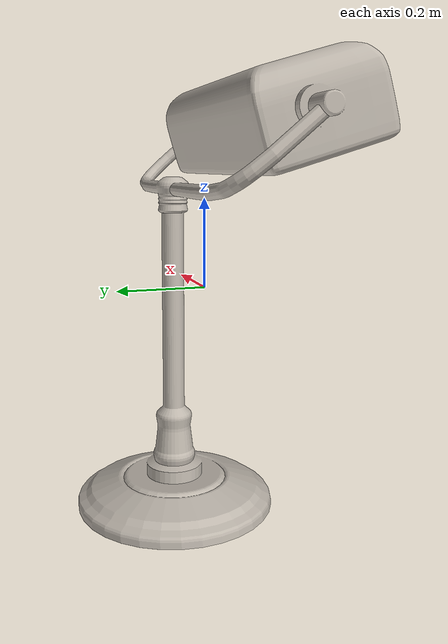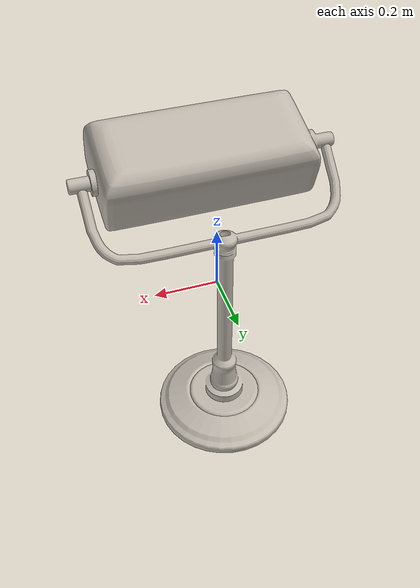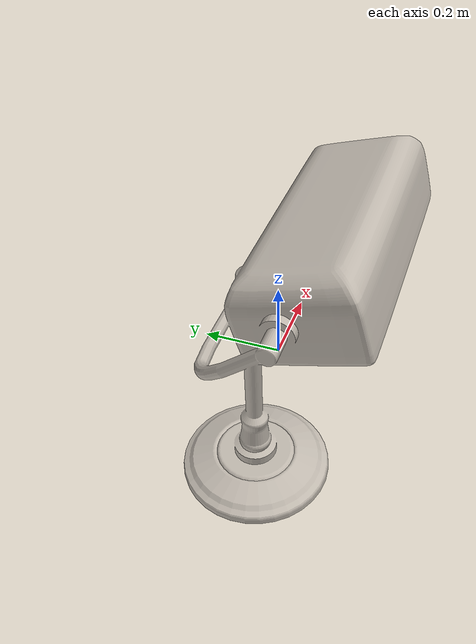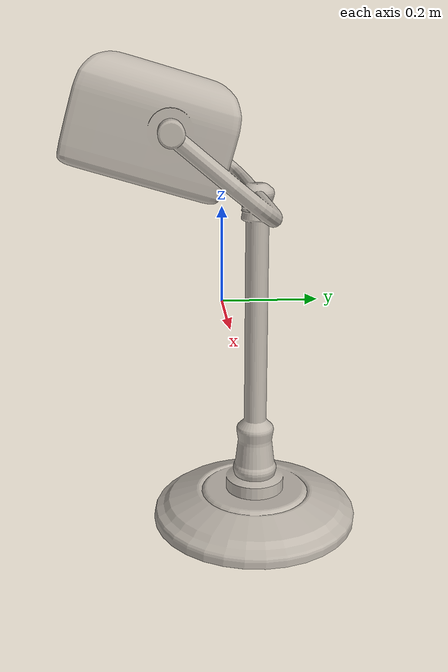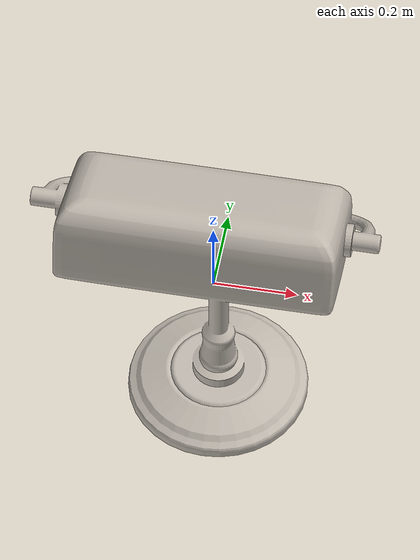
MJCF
<mujoco model="table_lamp">
  <asset>
  <texture file="visual/ceramic.png" name="tex-table_lamp" type="2d" />
  <material name="table_lamp" reflectance="0.5" texrepeat="1 1" texture="tex-table_lamp" texuniform="false" />
  <mesh file="visual/model_normalized_0.obj" name="model_normalized_0_vis" scale="1.0 1.0 1.0" /><mesh file="collision/model_normalized_collision_22.obj" name="model_normalized_collision_22._coll" scale="1.0 1.0 1.0" /><mesh file="collision/model_normalized_collision_4.obj" name="model_normalized_collision_4._coll" scale="1.0 1.0 1.0" /><mesh file="collision/model_normalized_collision_27.obj" name="model_normalized_collision_27._coll" scale="1.0 1.0 1.0" /><mesh file="collision/model_normalized_collision_6.obj" name="model_normalized_collision_6._coll" scale="1.0 1.0 1.0" /><mesh file="collision/model_normalized_collision_25.obj" name="model_normalized_collision_25._coll" scale="1.0 1.0 1.0" /><mesh file="collision/model_normalized_collision_26.obj" name="model_normalized_collision_26._coll" scale="1.0 1.0 1.0" /><mesh file="collision/model_normalized_collision_29.obj" name="model_normalized_collision_29._coll" scale="1.0 1.0 1.0" /><mesh file="collision/model_normalized_collision_19.obj" name="model_normalized_collision_19._coll" scale="1.0 1.0 1.0" /><mesh file="collision/model_normalized_collision_12.obj" name="model_normalized_collision_12._coll" scale="1.0 1.0 1.0" /><mesh file="collision/model_normalized_collision_17.obj" name="model_normalized_collision_17._coll" scale="1.0 1.0 1.0" /><mesh file="collision/model_normalized_collision_20.obj" name="model_normalized_collision_20._coll" scale="1.0 1.0 1.0" /><mesh file="collision/model_normalized_collision_14.obj" name="model_normalized_collision_14._coll" scale="1.0 1.0 1.0" /><mesh file="collision/model_normalized_collision_18.obj" name="model_normalized_collision_18._coll" scale="1.0 1.0 1.0" /><mesh file="collision/model_normalized_collision_15.obj" name="model_normalized_collision_15._coll" scale="1.0 1.0 1.0" /><mesh file="collision/model_normalized_collision_30.obj" name="model_normalized_collision_30._coll" scale="1.0 1.0 1.0" /><mesh file="collision/model_normalized_collision_31.obj" name="model_normalized_collision_31._coll" scale="1.0 1.0 1.0" /><mesh file="collision/model_normalized_collision_23.obj" name="model_normalized_collision_23._coll" scale="1.0 1.0 1.0" /><mesh file="collision/model_normalized_collision_28.obj" name="model_normalized_collision_28._coll" scale="1.0 1.0 1.0" /><mesh file="collision/model_normalized_collision_13.obj" name="model_normalized_collision_13._coll" scale="1.0 1.0 1.0" /><mesh file="collision/model_normalized_collision_5.obj" name="model_normalized_collision_5._coll" scale="1.0 1.0 1.0" /><mesh file="collision/model_normalized_collision_24.obj" name="model_normalized_collision_24._coll" scale="1.0 1.0 1.0" /><mesh file="collision/model_normalized_collision_16.obj" name="model_normalized_collision_16._coll" scale="1.0 1.0 1.0" /><mesh file="collision/model_normalized_collision_11.obj" name="model_normalized_collision_11._coll" scale="1.0 1.0 1.0" /><mesh file="collision/model_normalized_collision_1.obj" name="model_normalized_collision_1._coll" scale="1.0 1.0 1.0" /><mesh file="collision/model_normalized_collision_10.obj" name="model_normalized_collision_10._coll" scale="1.0 1.0 1.0" /><mesh file="collision/model_normalized_collision_21.obj" name="model_normalized_collision_21._coll" scale="1.0 1.0 1.0" /><mesh file="collision/model_normalized_collision_8.obj" name="model_normalized_collision_8._coll" scale="1.0 1.0 1.0" /><mesh file="collision/model_normalized_collision_7.obj" name="model_normalized_collision_7._coll" scale="1.0 1.0 1.0" /><mesh file="collision/model_normalized_collision_3.obj" name="model_normalized_collision_3._coll" scale="1.0 1.0 1.0" /><mesh file="collision/model_normalized_collision_2.obj" name="model_normalized_collision_2._coll" scale="1.0 1.0 1.0" /><mesh file="collision/model_normalized_collision_9.obj" name="model_normalized_collision_9._coll" scale="1.0 1.0 1.0" /><mesh file="collision/model_normalized_collision_0.obj" name="model_normalized_collision_0._coll" scale="1.0 1.0 1.0" /><texture type="2d" name="DefaultMaterial" file="visual/DefaultMaterial.png" /><material name="DefaultMaterial" texture="DefaultMaterial" specular="0.4000000000000001" shininess="0.001" /></asset>
  <worldbody>
    <body>
      <body name="object">
      <geom solimp="0.998 0.998 0.001" solref="0.001 1" density="100" friction="0.95 0.3 0.1" type="mesh" mesh="model_normalized_0_vis" conaffinity="0" contype="0" group="1" material="DefaultMaterial" /><geom solimp="0.998 0.998 0.001" solref="0.001 1" density="100" friction="0.95 0.3 0.1" type="mesh" mesh="model_normalized_collision_22._coll" group="0" rgba="0.8 0.8 0.8 0.0" /><geom solimp="0.998 0.998 0.001" solref="0.001 1" density="100" friction="0.95 0.3 0.1" type="mesh" mesh="model_normalized_collision_4._coll" group="0" rgba="0.8 0.8 0.8 0.0" /><geom solimp="0.998 0.998 0.001" solref="0.001 1" density="100" friction="0.95 0.3 0.1" type="mesh" mesh="model_normalized_collision_27._coll" group="0" rgba="0.8 0.8 0.8 0.0" /><geom solimp="0.998 0.998 0.001" solref="0.001 1" density="100" friction="0.95 0.3 0.1" type="mesh" mesh="model_normalized_collision_6._coll" group="0" rgba="0.8 0.8 0.8 0.0" /><geom solimp="0.998 0.998 0.001" solref="0.001 1" density="100" friction="0.95 0.3 0.1" type="mesh" mesh="model_normalized_collision_25._coll" group="0" rgba="0.8 0.8 0.8 0.0" /><geom solimp="0.998 0.998 0.001" solref="0.001 1" density="100" friction="0.95 0.3 0.1" type="mesh" mesh="model_normalized_collision_26._coll" group="0" rgba="0.8 0.8 0.8 0.0" /><geom solimp="0.998 0.998 0.001" solref="0.001 1" density="100" friction="0.95 0.3 0.1" type="mesh" mesh="model_normalized_collision_29._coll" group="0" rgba="0.8 0.8 0.8 0.0" /><geom solimp="0.998 0.998 0.001" solref="0.001 1" density="100" friction="0.95 0.3 0.1" type="mesh" mesh="model_normalized_collision_19._coll" group="0" rgba="0.8 0.8 0.8 0.0" /><geom solimp="0.998 0.998 0.001" solref="0.001 1" density="100" friction="0.95 0.3 0.1" type="mesh" mesh="model_normalized_collision_12._coll" group="0" rgba="0.8 0.8 0.8 0.0" /><geom solimp="0.998 0.998 0.001" solref="0.001 1" density="100" friction="0.95 0.3 0.1" type="mesh" mesh="model_normalized_collision_17._coll" group="0" rgba="0.8 0.8 0.8 0.0" /><geom solimp="0.998 0.998 0.001" solref="0.001 1" density="100" friction="0.95 0.3 0.1" type="mesh" mesh="model_normalized_collision_20._coll" group="0" rgba="0.8 0.8 0.8 0.0" /><geom solimp="0.998 0.998 0.001" solref="0.001 1" density="100" friction="0.95 0.3 0.1" type="mesh" mesh="model_normalized_collision_14._coll" group="0" rgba="0.8 0.8 0.8 0.0" /><geom solimp="0.998 0.998 0.001" solref="0.001 1" density="100" friction="0.95 0.3 0.1" type="mesh" mesh="model_normalized_collision_18._coll" group="0" rgba="0.8 0.8 0.8 0.0" /><geom solimp="0.998 0.998 0.001" solref="0.001 1" density="100" friction="0.95 0.3 0.1" type="mesh" mesh="model_normalized_collision_15._coll" group="0" rgba="0.8 0.8 0.8 0.0" /><geom solimp="0.998 0.998 0.001" solref="0.001 1" density="100" friction="0.95 0.3 0.1" type="mesh" mesh="model_normalized_collision_30._coll" group="0" rgba="0.8 0.8 0.8 0.0" /><geom solimp="0.998 0.998 0.001" solref="0.001 1" density="100" friction="0.95 0.3 0.1" type="mesh" mesh="model_normalized_collision_31._coll" group="0" rgba="0.8 0.8 0.8 0.0" /><geom solimp="0.998 0.998 0.001" solref="0.001 1" density="100" friction="0.95 0.3 0.1" type="mesh" mesh="model_normalized_collision_23._coll" group="0" rgba="0.8 0.8 0.8 0.0" /><geom solimp="0.998 0.998 0.001" solref="0.001 1" density="100" friction="0.95 0.3 0.1" type="mesh" mesh="model_normalized_collision_28._coll" group="0" rgba="0.8 0.8 0.8 0.0" /><geom solimp="0.998 0.998 0.001" solref="0.001 1" density="100" friction="0.95 0.3 0.1" type="mesh" mesh="model_normalized_collision_13._coll" group="0" rgba="0.8 0.8 0.8 0.0" /><geom solimp="0.998 0.998 0.001" solref="0.001 1" density="100" friction="0.95 0.3 0.1" type="mesh" mesh="model_normalized_collision_5._coll" group="0" rgba="0.8 0.8 0.8 0.0" /><geom solimp="0.998 0.998 0.001" solref="0.001 1" density="100" friction="0.95 0.3 0.1" type="mesh" mesh="model_normalized_collision_24._coll" group="0" rgba="0.8 0.8 0.8 0.0" /><geom solimp="0.998 0.998 0.001" solref="0.001 1" density="100" friction="0.95 0.3 0.1" type="mesh" mesh="model_normalized_collision_16._coll" group="0" rgba="0.8 0.8 0.8 0.0" /><geom solimp="0.998 0.998 0.001" solref="0.001 1" density="100" friction="0.95 0.3 0.1" type="mesh" mesh="model_normalized_collision_11._coll" group="0" rgba="0.8 0.8 0.8 0.0" /><geom solimp="0.998 0.998 0.001" solref="0.001 1" density="100" friction="0.95 0.3 0.1" type="mesh" mesh="model_normalized_collision_1._coll" group="0" rgba="0.8 0.8 0.8 0.0" /><geom solimp="0.998 0.998 0.001" solref="0.001 1" density="100" friction="0.95 0.3 0.1" type="mesh" mesh="model_normalized_collision_10._coll" group="0" rgba="0.8 0.8 0.8 0.0" /><geom solimp="0.998 0.998 0.001" solref="0.001 1" density="100" friction="0.95 0.3 0.1" type="mesh" mesh="model_normalized_collision_21._coll" group="0" rgba="0.8 0.8 0.8 0.0" /><geom solimp="0.998 0.998 0.001" solref="0.001 1" density="100" friction="0.95 0.3 0.1" type="mesh" mesh="model_normalized_collision_8._coll" group="0" rgba="0.8 0.8 0.8 0.0" /><geom solimp="0.998 0.998 0.001" solref="0.001 1" density="100" friction="0.95 0.3 0.1" type="mesh" mesh="model_normalized_collision_7._coll" group="0" rgba="0.8 0.8 0.8 0.0" /><geom solimp="0.998 0.998 0.001" solref="0.001 1" density="100" friction="0.95 0.3 0.1" type="mesh" mesh="model_normalized_collision_3._coll" group="0" rgba="0.8 0.8 0.8 0.0" /><geom solimp="0.998 0.998 0.001" solref="0.001 1" density="100" friction="0.95 0.3 0.1" type="mesh" mesh="model_normalized_collision_2._coll" group="0" rgba="0.8 0.8 0.8 0.0" /><geom solimp="0.998 0.998 0.001" solref="0.001 1" density="100" friction="0.95 0.3 0.1" type="mesh" mesh="model_normalized_collision_9._coll" group="0" rgba="0.8 0.8 0.8 0.0" /><geom solimp="0.998 0.998 0.001" solref="0.001 1" density="100" friction="0.95 0.3 0.1" type="mesh" mesh="model_normalized_collision_0._coll" group="0" rgba="0.8 0.8 0.8 0.0" /></body>
      <site rgba="0 0 0 0" size="0.005" pos="0.0035599883023437473 -0.0004909692931225063 -0.5075757575217322" name="bottom_site" />
      <site rgba="0 0 0 0" size="0.005" pos="0.0035599883023437473 -0.0004909692931225063 0.5075757559935857" name="top_site" />
      <site rgba="0 0 0 0" size="0.005" pos="0.41265089676810196 0.30253933335900285 -7.640732491154267e-10" name="horizontal_radius_site" />
    </body>
  </worldbody>
</mujoco>
